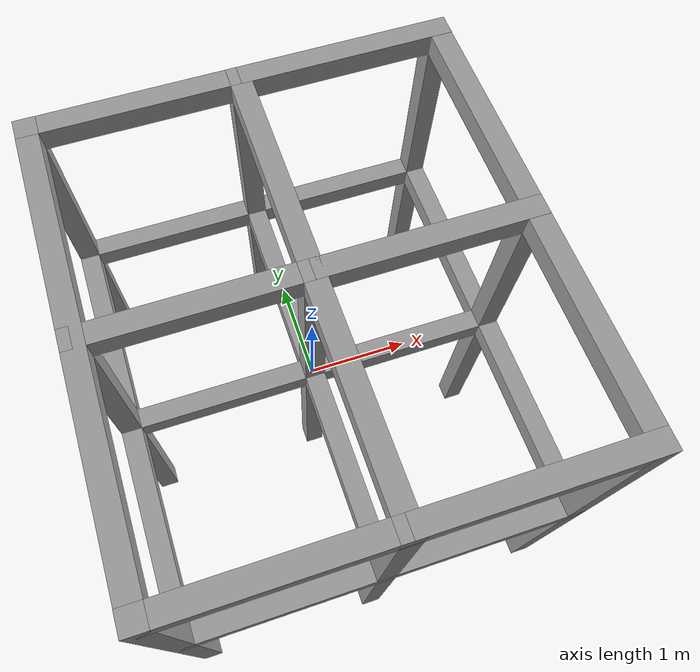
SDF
<?xml version='1.0'?>
<sdf version='1.7'>
  <model name='reticular_structure'>
    <link name='link_0'>
      <inertial>
        <mass>1</mass>
        <inertia>
          <ixx>0.166667</ixx>
          <ixy>0</ixy>
          <ixz>0</ixz>
          <iyy>0.166667</iyy>
          <iyz>0</iyz>
          <izz>0.166667</izz>
        </inertia>
        <pose>0 0 0 0 -0 0</pose>
      </inertial>
      <pose>0 0 0 0 -0 0</pose>
      <gravity>1</gravity>
      <self_collide>0</self_collide>
      <kinematic>0</kinematic>
      <enable_wind>0</enable_wind>
      <visual name='visual'>
        <pose>0 0 0 0 -0 0</pose>
        <geometry>
          <box>
            <size>0.2 0.2 4</size>
          </box>
        </geometry>
        <material>
          <lighting>1</lighting>
          <script>
            <uri>file://media/materials/scripts/gazebo.material</uri>
            <name>Gazebo/Grey</name>
          </script>
          <shader type='pixel'>
            <normal_map>__default__</normal_map>
          </shader>
          <ambient>0.3 0.3 0.3 1</ambient>
          <diffuse>0.7 0.7 0.7 1</diffuse>
          <specular>0.01 0.01 0.01 1</specular>
          <emissive>0 0 0 1</emissive>
        </material>
        <transparency>0</transparency>
        <cast_shadows>1</cast_shadows>
        <laser_retro>1</laser_retro>
      </visual>
      <collision name='collision'>
        <laser_retro>0</laser_retro>
        <max_contacts>10</max_contacts>
        <pose>0 0 0 0 -0 0</pose>
        <geometry>
          <box>
            <size>0.2 0.2 4</size>
          </box>
        </geometry>
        <surface>
          <friction>
            <ode>
              <mu>1</mu>
              <mu2>1</mu2>
              <fdir1>0 0 0</fdir1>
              <slip1>0</slip1>
              <slip2>0</slip2>
            </ode>
            <torsional>
              <coefficient>1</coefficient>
              <patch_radius>0</patch_radius>
              <surface_radius>0</surface_radius>
              <use_patch_radius>1</use_patch_radius>
              <ode>
                <slip>0</slip>
              </ode>
            </torsional>
          </friction>
          <bounce>
            <restitution_coefficient>0</restitution_coefficient>
            <threshold>1e+06</threshold>
          </bounce>
          <contact>
            <collide_without_contact>0</collide_without_contact>
            <collide_without_contact_bitmask>1</collide_without_contact_bitmask>
            <collide_bitmask>1</collide_bitmask>
            <ode>
              <soft_cfm>0</soft_cfm>
              <soft_erp>0.2</soft_erp>
              <kp>1e+13</kp>
              <kd>1</kd>
              <max_vel>0.01</max_vel>
              <min_depth>0</min_depth>
            </ode>
            <bullet>
              <split_impulse>1</split_impulse>
              <split_impulse_penetration_threshold>-0.01</split_impulse_penetration_threshold>
              <soft_cfm>0</soft_cfm>
              <soft_erp>0.2</soft_erp>
              <kp>1e+13</kp>
              <kd>1</kd>
            </bullet>
          </contact>
        </surface>
      </collision>
    </link>
    <link name='link_0_clone'>
      <inertial>
        <mass>1</mass>
        <inertia>
          <ixx>0.166667</ixx>
          <ixy>0</ixy>
          <ixz>0</ixz>
          <iyy>0.166667</iyy>
          <iyz>0</iyz>
          <izz>0.166667</izz>
        </inertia>
        <pose>0 0 0 0 -0 0</pose>
      </inertial>
      <pose>0 0 0 0 1.57 0</pose>
      <gravity>1</gravity>
      <self_collide>0</self_collide>
      <kinematic>0</kinematic>
      <enable_wind>0</enable_wind>
      <visual name='visual'>
        <pose>0 0 0 0 -0 0</pose>
        <geometry>
          <box>
            <size>0.2 0.2 4</size>
          </box>
        </geometry>
        <material>
          <lighting>1</lighting>
          <script>
            <uri>file://media/materials/scripts/gazebo.material</uri>
            <name>Gazebo/Grey</name>
          </script>
          <shader type='pixel'>
            <normal_map>__default__</normal_map>
          </shader>
          <ambient>0.3 0.3 0.3 1</ambient>
          <diffuse>0.7 0.7 0.7 1</diffuse>
          <specular>0.01 0.01 0.01 1</specular>
          <emissive>0 0 0 1</emissive>
        </material>
        <transparency>0</transparency>
        <cast_shadows>1</cast_shadows>
        <laser_retro>1</laser_retro>
      </visual>
      <collision name='collision'>
        <laser_retro>0</laser_retro>
        <max_contacts>10</max_contacts>
        <pose>0 0 0 0 -0 0</pose>
        <geometry>
          <box>
            <size>0.2 0.2 4</size>
          </box>
        </geometry>
        <surface>
          <friction>
            <ode>
              <mu>1</mu>
              <mu2>1</mu2>
              <fdir1>0 0 0</fdir1>
              <slip1>0</slip1>
              <slip2>0</slip2>
            </ode>
            <torsional>
              <coefficient>1</coefficient>
              <patch_radius>0</patch_radius>
              <surface_radius>0</surface_radius>
              <use_patch_radius>1</use_patch_radius>
              <ode>
                <slip>0</slip>
              </ode>
            </torsional>
          </friction>
          <bounce>
            <restitution_coefficient>0</restitution_coefficient>
            <threshold>1e+06</threshold>
          </bounce>
          <contact>
            <collide_without_contact>0</collide_without_contact>
            <collide_without_contact_bitmask>1</collide_without_contact_bitmask>
            <collide_bitmask>1</collide_bitmask>
            <ode>
              <soft_cfm>0</soft_cfm>
              <soft_erp>0.2</soft_erp>
              <kp>1e+13</kp>
              <kd>1</kd>
              <max_vel>0.01</max_vel>
              <min_depth>0</min_depth>
            </ode>
            <bullet>
              <split_impulse>1</split_impulse>
              <split_impulse_penetration_threshold>-0.01</split_impulse_penetration_threshold>
              <soft_cfm>0</soft_cfm>
              <soft_erp>0.2</soft_erp>
              <kp>1e+13</kp>
              <kd>1</kd>
            </bullet>
          </contact>
        </surface>
      </collision>
    </link>
    <link name='link_0_clone_0'>
      <inertial>
        <mass>1</mass>
        <inertia>
          <ixx>0.166667</ixx>
          <ixy>0</ixy>
          <ixz>0</ixz>
          <iyy>0.166667</iyy>
          <iyz>0</iyz>
          <izz>0.166667</izz>
        </inertia>
        <pose>0 0 0 0 -0 0</pose>
      </inertial>
      <pose>-1.9 0 0 0 -0 0</pose>
      <gravity>1</gravity>
      <self_collide>0</self_collide>
      <kinematic>0</kinematic>
      <enable_wind>0</enable_wind>
      <visual name='visual'>
        <pose>0 0 0 0 -0 0</pose>
        <geometry>
          <box>
            <size>0.2 0.2 4</size>
          </box>
        </geometry>
        <material>
          <lighting>1</lighting>
          <script>
            <uri>file://media/materials/scripts/gazebo.material</uri>
            <name>Gazebo/Grey</name>
          </script>
          <shader type='pixel'>
            <normal_map>__default__</normal_map>
          </shader>
          <ambient>0.3 0.3 0.3 1</ambient>
          <diffuse>0.7 0.7 0.7 1</diffuse>
          <specular>0.01 0.01 0.01 1</specular>
          <emissive>0 0 0 1</emissive>
        </material>
        <transparency>0</transparency>
        <cast_shadows>1</cast_shadows>
        <laser_retro>1</laser_retro>
      </visual>
      <collision name='collision'>
        <laser_retro>0</laser_retro>
        <max_contacts>10</max_contacts>
        <pose>0 0 0 0 -0 0</pose>
        <geometry>
          <box>
            <size>0.2 0.2 4</size>
          </box>
        </geometry>
        <surface>
          <friction>
            <ode>
              <mu>1</mu>
              <mu2>1</mu2>
              <fdir1>0 0 0</fdir1>
              <slip1>0</slip1>
              <slip2>0</slip2>
            </ode>
            <torsional>
              <coefficient>1</coefficient>
              <patch_radius>0</patch_radius>
              <surface_radius>0</surface_radius>
              <use_patch_radius>1</use_patch_radius>
              <ode>
                <slip>0</slip>
              </ode>
            </torsional>
          </friction>
          <bounce>
            <restitution_coefficient>0</restitution_coefficient>
            <threshold>1e+06</threshold>
          </bounce>
          <contact>
            <collide_without_contact>0</collide_without_contact>
            <collide_without_contact_bitmask>1</collide_without_contact_bitmask>
            <collide_bitmask>1</collide_bitmask>
            <ode>
              <soft_cfm>0</soft_cfm>
              <soft_erp>0.2</soft_erp>
              <kp>1e+13</kp>
              <kd>1</kd>
              <max_vel>0.01</max_vel>
              <min_depth>0</min_depth>
            </ode>
            <bullet>
              <split_impulse>1</split_impulse>
              <split_impulse_penetration_threshold>-0.01</split_impulse_penetration_threshold>
              <soft_cfm>0</soft_cfm>
              <soft_erp>0.2</soft_erp>
              <kp>1e+13</kp>
              <kd>1</kd>
            </bullet>
          </contact>
        </surface>
      </collision>
    </link>
    <link name='link_0_clone_0_clone'>
      <inertial>
        <mass>1</mass>
        <inertia>
          <ixx>0.166667</ixx>
          <ixy>0</ixy>
          <ixz>0</ixz>
          <iyy>0.166667</iyy>
          <iyz>0</iyz>
          <izz>0.166667</izz>
        </inertia>
        <pose>0 0 0 0 -0 0</pose>
      </inertial>
      <pose>1.9 0 0 0 -0 0</pose>
      <gravity>1</gravity>
      <self_collide>0</self_collide>
      <kinematic>0</kinematic>
      <enable_wind>0</enable_wind>
      <visual name='visual'>
        <pose>0 0 0 0 -0 0</pose>
        <geometry>
          <box>
            <size>0.2 0.2 4</size>
          </box>
        </geometry>
        <material>
          <lighting>1</lighting>
          <script>
            <uri>file://media/materials/scripts/gazebo.material</uri>
            <name>Gazebo/Grey</name>
          </script>
          <shader type='pixel'>
            <normal_map>__default__</normal_map>
          </shader>
          <ambient>0.3 0.3 0.3 1</ambient>
          <diffuse>0.7 0.7 0.7 1</diffuse>
          <specular>0.01 0.01 0.01 1</specular>
          <emissive>0 0 0 1</emissive>
        </material>
        <transparency>0</transparency>
        <cast_shadows>1</cast_shadows>
        <laser_retro>1</laser_retro>
      </visual>
      <collision name='collision'>
        <laser_retro>0</laser_retro>
        <max_contacts>10</max_contacts>
        <pose>0 0 0 0 -0 0</pose>
        <geometry>
          <box>
            <size>0.2 0.2 4</size>
          </box>
        </geometry>
        <surface>
          <friction>
            <ode>
              <mu>1</mu>
              <mu2>1</mu2>
              <fdir1>0 0 0</fdir1>
              <slip1>0</slip1>
              <slip2>0</slip2>
            </ode>
            <torsional>
              <coefficient>1</coefficient>
              <patch_radius>0</patch_radius>
              <surface_radius>0</surface_radius>
              <use_patch_radius>1</use_patch_radius>
              <ode>
                <slip>0</slip>
              </ode>
            </torsional>
          </friction>
          <bounce>
            <restitution_coefficient>0</restitution_coefficient>
            <threshold>1e+06</threshold>
          </bounce>
          <contact>
            <collide_without_contact>0</collide_without_contact>
            <collide_without_contact_bitmask>1</collide_without_contact_bitmask>
            <collide_bitmask>1</collide_bitmask>
            <ode>
              <soft_cfm>0</soft_cfm>
              <soft_erp>0.2</soft_erp>
              <kp>1e+13</kp>
              <kd>1</kd>
              <max_vel>0.01</max_vel>
              <min_depth>0</min_depth>
            </ode>
            <bullet>
              <split_impulse>1</split_impulse>
              <split_impulse_penetration_threshold>-0.01</split_impulse_penetration_threshold>
              <soft_cfm>0</soft_cfm>
              <soft_erp>0.2</soft_erp>
              <kp>1e+13</kp>
              <kd>1</kd>
            </bullet>
          </contact>
        </surface>
      </collision>
    </link>
    <link name='link_0_clone_0_clone_0'>
      <inertial>
        <mass>1</mass>
        <inertia>
          <ixx>0.166667</ixx>
          <ixy>0</ixy>
          <ixz>0</ixz>
          <iyy>0.166667</iyy>
          <iyz>0</iyz>
          <izz>0.166667</izz>
        </inertia>
        <pose>0 0 0 0 -0 0</pose>
      </inertial>
      <pose>0 -2.1 0 0 -0 0</pose>
      <gravity>1</gravity>
      <self_collide>0</self_collide>
      <kinematic>0</kinematic>
      <enable_wind>0</enable_wind>
      <visual name='visual'>
        <pose>0 0 0 0 -0 0</pose>
        <geometry>
          <box>
            <size>0.2 0.2 4</size>
          </box>
        </geometry>
        <material>
          <lighting>1</lighting>
          <script>
            <uri>file://media/materials/scripts/gazebo.material</uri>
            <name>Gazebo/Grey</name>
          </script>
          <shader type='pixel'>
            <normal_map>__default__</normal_map>
          </shader>
          <ambient>0.3 0.3 0.3 1</ambient>
          <diffuse>0.7 0.7 0.7 1</diffuse>
          <specular>0.01 0.01 0.01 1</specular>
          <emissive>0 0 0 1</emissive>
        </material>
        <transparency>0</transparency>
        <cast_shadows>1</cast_shadows>
        <laser_retro>1</laser_retro>
      </visual>
      <collision name='collision'>
        <laser_retro>0</laser_retro>
        <max_contacts>10</max_contacts>
        <pose>0 0 0 0 -0 0</pose>
        <geometry>
          <box>
            <size>0.2 0.2 4</size>
          </box>
        </geometry>
        <surface>
          <friction>
            <ode>
              <mu>1</mu>
              <mu2>1</mu2>
              <fdir1>0 0 0</fdir1>
              <slip1>0</slip1>
              <slip2>0</slip2>
            </ode>
            <torsional>
              <coefficient>1</coefficient>
              <patch_radius>0</patch_radius>
              <surface_radius>0</surface_radius>
              <use_patch_radius>1</use_patch_radius>
              <ode>
                <slip>0</slip>
              </ode>
            </torsional>
          </friction>
          <bounce>
            <restitution_coefficient>0</restitution_coefficient>
            <threshold>1e+06</threshold>
          </bounce>
          <contact>
            <collide_without_contact>0</collide_without_contact>
            <collide_without_contact_bitmask>1</collide_without_contact_bitmask>
            <collide_bitmask>1</collide_bitmask>
            <ode>
              <soft_cfm>0</soft_cfm>
              <soft_erp>0.2</soft_erp>
              <kp>1e+13</kp>
              <kd>1</kd>
              <max_vel>0.01</max_vel>
              <min_depth>0</min_depth>
            </ode>
            <bullet>
              <split_impulse>1</split_impulse>
              <split_impulse_penetration_threshold>-0.01</split_impulse_penetration_threshold>
              <soft_cfm>0</soft_cfm>
              <soft_erp>0.2</soft_erp>
              <kp>1e+13</kp>
              <kd>1</kd>
            </bullet>
          </contact>
        </surface>
      </collision>
    </link>
    <link name='link_0_clone_0_clone_0_clone'>
      <inertial>
        <mass>1</mass>
        <inertia>
          <ixx>0.166667</ixx>
          <ixy>0</ixy>
          <ixz>0</ixz>
          <iyy>0.166667</iyy>
          <iyz>0</iyz>
          <izz>0.166667</izz>
        </inertia>
        <pose>0 0 0 0 -0 0</pose>
      </inertial>
      <pose>1.9 -2.1 0 0 -0 0</pose>
      <gravity>1</gravity>
      <self_collide>0</self_collide>
      <kinematic>0</kinematic>
      <enable_wind>0</enable_wind>
      <visual name='visual'>
        <pose>0 0 0 0 -0 0</pose>
        <geometry>
          <box>
            <size>0.2 0.2 4</size>
          </box>
        </geometry>
        <material>
          <lighting>1</lighting>
          <script>
            <uri>file://media/materials/scripts/gazebo.material</uri>
            <name>Gazebo/Grey</name>
          </script>
          <shader type='pixel'>
            <normal_map>__default__</normal_map>
          </shader>
          <ambient>0.3 0.3 0.3 1</ambient>
          <diffuse>0.7 0.7 0.7 1</diffuse>
          <specular>0.01 0.01 0.01 1</specular>
          <emissive>0 0 0 1</emissive>
        </material>
        <transparency>0</transparency>
        <cast_shadows>1</cast_shadows>
        <laser_retro>1</laser_retro>
      </visual>
      <collision name='collision'>
        <laser_retro>0</laser_retro>
        <max_contacts>10</max_contacts>
        <pose>0 0 0 0 -0 0</pose>
        <geometry>
          <box>
            <size>0.2 0.2 4</size>
          </box>
        </geometry>
        <surface>
          <friction>
            <ode>
              <mu>1</mu>
              <mu2>1</mu2>
              <fdir1>0 0 0</fdir1>
              <slip1>0</slip1>
              <slip2>0</slip2>
            </ode>
            <torsional>
              <coefficient>1</coefficient>
              <patch_radius>0</patch_radius>
              <surface_radius>0</surface_radius>
              <use_patch_radius>1</use_patch_radius>
              <ode>
                <slip>0</slip>
              </ode>
            </torsional>
          </friction>
          <bounce>
            <restitution_coefficient>0</restitution_coefficient>
            <threshold>1e+06</threshold>
          </bounce>
          <contact>
            <collide_without_contact>0</collide_without_contact>
            <collide_without_contact_bitmask>1</collide_without_contact_bitmask>
            <collide_bitmask>1</collide_bitmask>
            <ode>
              <soft_cfm>0</soft_cfm>
              <soft_erp>0.2</soft_erp>
              <kp>1e+13</kp>
              <kd>1</kd>
              <max_vel>0.01</max_vel>
              <min_depth>0</min_depth>
            </ode>
            <bullet>
              <split_impulse>1</split_impulse>
              <split_impulse_penetration_threshold>-0.01</split_impulse_penetration_threshold>
              <soft_cfm>0</soft_cfm>
              <soft_erp>0.2</soft_erp>
              <kp>1e+13</kp>
              <kd>1</kd>
            </bullet>
          </contact>
        </surface>
      </collision>
    </link>
    <link name='link_0_clone_0_clone_0_clone_0'>
      <inertial>
        <mass>1</mass>
        <inertia>
          <ixx>0.166667</ixx>
          <ixy>0</ixy>
          <ixz>0</ixz>
          <iyy>0.166667</iyy>
          <iyz>0</iyz>
          <izz>0.166667</izz>
        </inertia>
        <pose>0 0 0 0 -0 0</pose>
      </inertial>
      <pose>-1.9 -2.1 0 0 -0 0</pose>
      <gravity>1</gravity>
      <self_collide>0</self_collide>
      <kinematic>0</kinematic>
      <enable_wind>0</enable_wind>
      <visual name='visual'>
        <pose>0 0 0 0 -0 0</pose>
        <geometry>
          <box>
            <size>0.2 0.2 4</size>
          </box>
        </geometry>
        <material>
          <lighting>1</lighting>
          <script>
            <uri>file://media/materials/scripts/gazebo.material</uri>
            <name>Gazebo/Grey</name>
          </script>
          <shader type='pixel'>
            <normal_map>__default__</normal_map>
          </shader>
          <ambient>0.3 0.3 0.3 1</ambient>
          <diffuse>0.7 0.7 0.7 1</diffuse>
          <specular>0.01 0.01 0.01 1</specular>
          <emissive>0 0 0 1</emissive>
        </material>
        <transparency>0</transparency>
        <cast_shadows>1</cast_shadows>
        <laser_retro>1</laser_retro>
      </visual>
      <collision name='collision'>
        <laser_retro>0</laser_retro>
        <max_contacts>10</max_contacts>
        <pose>0 0 0 0 -0 0</pose>
        <geometry>
          <box>
            <size>0.2 0.2 4</size>
          </box>
        </geometry>
        <surface>
          <friction>
            <ode>
              <mu>1</mu>
              <mu2>1</mu2>
              <fdir1>0 0 0</fdir1>
              <slip1>0</slip1>
              <slip2>0</slip2>
            </ode>
            <torsional>
              <coefficient>1</coefficient>
              <patch_radius>0</patch_radius>
              <surface_radius>0</surface_radius>
              <use_patch_radius>1</use_patch_radius>
              <ode>
                <slip>0</slip>
              </ode>
            </torsional>
          </friction>
          <bounce>
            <restitution_coefficient>0</restitution_coefficient>
            <threshold>1e+06</threshold>
          </bounce>
          <contact>
            <collide_without_contact>0</collide_without_contact>
            <collide_without_contact_bitmask>1</collide_without_contact_bitmask>
            <collide_bitmask>1</collide_bitmask>
            <ode>
              <soft_cfm>0</soft_cfm>
              <soft_erp>0.2</soft_erp>
              <kp>1e+13</kp>
              <kd>1</kd>
              <max_vel>0.01</max_vel>
              <min_depth>0</min_depth>
            </ode>
            <bullet>
              <split_impulse>1</split_impulse>
              <split_impulse_penetration_threshold>-0.01</split_impulse_penetration_threshold>
              <soft_cfm>0</soft_cfm>
              <soft_erp>0.2</soft_erp>
              <kp>1e+13</kp>
              <kd>1</kd>
            </bullet>
          </contact>
        </surface>
      </collision>
    </link>
    <link name='link_0_clone_0_clone_0_clone_clone'>
      <inertial>
        <mass>1</mass>
        <inertia>
          <ixx>0.166667</ixx>
          <ixy>0</ixy>
          <ixz>0</ixz>
          <iyy>0.166667</iyy>
          <iyz>0</iyz>
          <izz>0.166667</izz>
        </inertia>
        <pose>0 0 0 0 -0 0</pose>
      </inertial>
      <pose>1.9 2.1 0 0 -0 0</pose>
      <gravity>1</gravity>
      <self_collide>0</self_collide>
      <kinematic>0</kinematic>
      <enable_wind>0</enable_wind>
      <visual name='visual'>
        <pose>0 0 0 0 -0 0</pose>
        <geometry>
          <box>
            <size>0.2 0.2 4</size>
          </box>
        </geometry>
        <material>
          <lighting>1</lighting>
          <script>
            <uri>file://media/materials/scripts/gazebo.material</uri>
            <name>Gazebo/Grey</name>
          </script>
          <shader type='pixel'>
            <normal_map>__default__</normal_map>
          </shader>
          <ambient>0.3 0.3 0.3 1</ambient>
          <diffuse>0.7 0.7 0.7 1</diffuse>
          <specular>0.01 0.01 0.01 1</specular>
          <emissive>0 0 0 1</emissive>
        </material>
        <transparency>0</transparency>
        <cast_shadows>1</cast_shadows>
        <laser_retro>1</laser_retro>
      </visual>
      <collision name='collision'>
        <laser_retro>0</laser_retro>
        <max_contacts>10</max_contacts>
        <pose>0 0 0 0 -0 0</pose>
        <geometry>
          <box>
            <size>0.2 0.2 4</size>
          </box>
        </geometry>
        <surface>
          <friction>
            <ode>
              <mu>1</mu>
              <mu2>1</mu2>
              <fdir1>0 0 0</fdir1>
              <slip1>0</slip1>
              <slip2>0</slip2>
            </ode>
            <torsional>
              <coefficient>1</coefficient>
              <patch_radius>0</patch_radius>
              <surface_radius>0</surface_radius>
              <use_patch_radius>1</use_patch_radius>
              <ode>
                <slip>0</slip>
              </ode>
            </torsional>
          </friction>
          <bounce>
            <restitution_coefficient>0</restitution_coefficient>
            <threshold>1e+06</threshold>
          </bounce>
          <contact>
            <collide_without_contact>0</collide_without_contact>
            <collide_without_contact_bitmask>1</collide_without_contact_bitmask>
            <collide_bitmask>1</collide_bitmask>
            <ode>
              <soft_cfm>0</soft_cfm>
              <soft_erp>0.2</soft_erp>
              <kp>1e+13</kp>
              <kd>1</kd>
              <max_vel>0.01</max_vel>
              <min_depth>0</min_depth>
            </ode>
            <bullet>
              <split_impulse>1</split_impulse>
              <split_impulse_penetration_threshold>-0.01</split_impulse_penetration_threshold>
              <soft_cfm>0</soft_cfm>
              <soft_erp>0.2</soft_erp>
              <kp>1e+13</kp>
              <kd>1</kd>
            </bullet>
          </contact>
        </surface>
      </collision>
    </link>
    <link name='link_0_clone_0_clone_0_clone_clone_0'>
      <inertial>
        <mass>1</mass>
        <inertia>
          <ixx>0.166667</ixx>
          <ixy>0</ixy>
          <ixz>0</ixz>
          <iyy>0.166667</iyy>
          <iyz>0</iyz>
          <izz>0.166667</izz>
        </inertia>
        <pose>0 0 0 0 -0 0</pose>
      </inertial>
      <pose>0 2.1 0 0 -0 0</pose>
      <gravity>1</gravity>
      <self_collide>0</self_collide>
      <kinematic>0</kinematic>
      <enable_wind>0</enable_wind>
      <visual name='visual'>
        <pose>0 0 0 0 -0 0</pose>
        <geometry>
          <box>
            <size>0.2 0.2 4</size>
          </box>
        </geometry>
        <material>
          <lighting>1</lighting>
          <script>
            <uri>file://media/materials/scripts/gazebo.material</uri>
            <name>Gazebo/Grey</name>
          </script>
          <shader type='pixel'>
            <normal_map>__default__</normal_map>
          </shader>
          <ambient>0.3 0.3 0.3 1</ambient>
          <diffuse>0.7 0.7 0.7 1</diffuse>
          <specular>0.01 0.01 0.01 1</specular>
          <emissive>0 0 0 1</emissive>
        </material>
        <transparency>0</transparency>
        <cast_shadows>1</cast_shadows>
        <laser_retro>1</laser_retro>
      </visual>
      <collision name='collision'>
        <laser_retro>0</laser_retro>
        <max_contacts>10</max_contacts>
        <pose>0 0 0 0 -0 0</pose>
        <geometry>
          <box>
            <size>0.2 0.2 4</size>
          </box>
        </geometry>
        <surface>
          <friction>
            <ode>
              <mu>1</mu>
              <mu2>1</mu2>
              <fdir1>0 0 0</fdir1>
              <slip1>0</slip1>
              <slip2>0</slip2>
            </ode>
            <torsional>
              <coefficient>1</coefficient>
              <patch_radius>0</patch_radius>
              <surface_radius>0</surface_radius>
              <use_patch_radius>1</use_patch_radius>
              <ode>
                <slip>0</slip>
              </ode>
            </torsional>
          </friction>
          <bounce>
            <restitution_coefficient>0</restitution_coefficient>
            <threshold>1e+06</threshold>
          </bounce>
          <contact>
            <collide_without_contact>0</collide_without_contact>
            <collide_without_contact_bitmask>1</collide_without_contact_bitmask>
            <collide_bitmask>1</collide_bitmask>
            <ode>
              <soft_cfm>0</soft_cfm>
              <soft_erp>0.2</soft_erp>
              <kp>1e+13</kp>
              <kd>1</kd>
              <max_vel>0.01</max_vel>
              <min_depth>0</min_depth>
            </ode>
            <bullet>
              <split_impulse>1</split_impulse>
              <split_impulse_penetration_threshold>-0.01</split_impulse_penetration_threshold>
              <soft_cfm>0</soft_cfm>
              <soft_erp>0.2</soft_erp>
              <kp>1e+13</kp>
              <kd>1</kd>
            </bullet>
          </contact>
        </surface>
      </collision>
    </link>
    <link name='link_0_clone_0_clone_0_clone_clone_0_clone'>
      <inertial>
        <mass>1</mass>
        <inertia>
          <ixx>0.166667</ixx>
          <ixy>0</ixy>
          <ixz>0</ixz>
          <iyy>0.166667</iyy>
          <iyz>0</iyz>
          <izz>0.166667</izz>
        </inertia>
        <pose>0 0 0 0 -0 0</pose>
      </inertial>
      <pose>-1.9 2.1 0 0 -0 0</pose>
      <gravity>1</gravity>
      <self_collide>0</self_collide>
      <kinematic>0</kinematic>
      <enable_wind>0</enable_wind>
      <visual name='visual'>
        <pose>0 0 0 0 -0 0</pose>
        <geometry>
          <box>
            <size>0.2 0.2 4</size>
          </box>
        </geometry>
        <material>
          <lighting>1</lighting>
          <script>
            <uri>file://media/materials/scripts/gazebo.material</uri>
            <name>Gazebo/Grey</name>
          </script>
          <shader type='pixel'>
            <normal_map>__default__</normal_map>
          </shader>
          <ambient>0.3 0.3 0.3 1</ambient>
          <diffuse>0.7 0.7 0.7 1</diffuse>
          <specular>0.01 0.01 0.01 1</specular>
          <emissive>0 0 0 1</emissive>
        </material>
        <transparency>0</transparency>
        <cast_shadows>1</cast_shadows>
        <laser_retro>1</laser_retro>
      </visual>
      <collision name='collision'>
        <laser_retro>0</laser_retro>
        <max_contacts>10</max_contacts>
        <pose>0 0 0 0 -0 0</pose>
        <geometry>
          <box>
            <size>0.2 0.2 4</size>
          </box>
        </geometry>
        <surface>
          <friction>
            <ode>
              <mu>1</mu>
              <mu2>1</mu2>
              <fdir1>0 0 0</fdir1>
              <slip1>0</slip1>
              <slip2>0</slip2>
            </ode>
            <torsional>
              <coefficient>1</coefficient>
              <patch_radius>0</patch_radius>
              <surface_radius>0</surface_radius>
              <use_patch_radius>1</use_patch_radius>
              <ode>
                <slip>0</slip>
              </ode>
            </torsional>
          </friction>
          <bounce>
            <restitution_coefficient>0</restitution_coefficient>
            <threshold>1e+06</threshold>
          </bounce>
          <contact>
            <collide_without_contact>0</collide_without_contact>
            <collide_without_contact_bitmask>1</collide_without_contact_bitmask>
            <collide_bitmask>1</collide_bitmask>
            <ode>
              <soft_cfm>0</soft_cfm>
              <soft_erp>0.2</soft_erp>
              <kp>1e+13</kp>
              <kd>1</kd>
              <max_vel>0.01</max_vel>
              <min_depth>0</min_depth>
            </ode>
            <bullet>
              <split_impulse>1</split_impulse>
              <split_impulse_penetration_threshold>-0.01</split_impulse_penetration_threshold>
              <soft_cfm>0</soft_cfm>
              <soft_erp>0.2</soft_erp>
              <kp>1e+13</kp>
              <kd>1</kd>
            </bullet>
          </contact>
        </surface>
      </collision>
    </link>
    <link name='link_0_clone_clone'>
      <inertial>
        <mass>1</mass>
        <inertia>
          <ixx>0.166667</ixx>
          <ixy>0</ixy>
          <ixz>0</ixz>
          <iyy>0.166667</iyy>
          <iyz>0</iyz>
          <izz>0.166667</izz>
        </inertia>
        <pose>0 0 0 0 -0 0</pose>
      </inertial>
      <pose>0 0 0 1.56994 1.57 -4.3e-05</pose>
      <gravity>1</gravity>
      <self_collide>0</self_collide>
      <kinematic>0</kinematic>
      <enable_wind>0</enable_wind>
      <visual name='visual'>
        <pose>0 0 0 0 -0 0</pose>
        <geometry>
          <box>
            <size>0.2 0.2 4</size>
          </box>
        </geometry>
        <material>
          <lighting>1</lighting>
          <script>
            <uri>file://media/materials/scripts/gazebo.material</uri>
            <name>Gazebo/Grey</name>
          </script>
          <shader type='pixel'>
            <normal_map>__default__</normal_map>
          </shader>
          <ambient>0.3 0.3 0.3 1</ambient>
          <diffuse>0.7 0.7 0.7 1</diffuse>
          <specular>0.01 0.01 0.01 1</specular>
          <emissive>0 0 0 1</emissive>
        </material>
        <transparency>0</transparency>
        <cast_shadows>1</cast_shadows>
        <laser_retro>1</laser_retro>
      </visual>
      <collision name='collision'>
        <laser_retro>0</laser_retro>
        <max_contacts>10</max_contacts>
        <pose>0 0 0 0 -0 0</pose>
        <geometry>
          <box>
            <size>0.2 0.2 4</size>
          </box>
        </geometry>
        <surface>
          <friction>
            <ode>
              <mu>1</mu>
              <mu2>1</mu2>
              <fdir1>0 0 0</fdir1>
              <slip1>0</slip1>
              <slip2>0</slip2>
            </ode>
            <torsional>
              <coefficient>1</coefficient>
              <patch_radius>0</patch_radius>
              <surface_radius>0</surface_radius>
              <use_patch_radius>1</use_patch_radius>
              <ode>
                <slip>0</slip>
              </ode>
            </torsional>
          </friction>
          <bounce>
            <restitution_coefficient>0</restitution_coefficient>
            <threshold>1e+06</threshold>
          </bounce>
          <contact>
            <collide_without_contact>0</collide_without_contact>
            <collide_without_contact_bitmask>1</collide_without_contact_bitmask>
            <collide_bitmask>1</collide_bitmask>
            <ode>
              <soft_cfm>0</soft_cfm>
              <soft_erp>0.2</soft_erp>
              <kp>1e+13</kp>
              <kd>1</kd>
              <max_vel>0.01</max_vel>
              <min_depth>0</min_depth>
            </ode>
            <bullet>
              <split_impulse>1</split_impulse>
              <split_impulse_penetration_threshold>-0.01</split_impulse_penetration_threshold>
              <soft_cfm>0</soft_cfm>
              <soft_erp>0.2</soft_erp>
              <kp>1e+13</kp>
              <kd>1</kd>
            </bullet>
          </contact>
        </surface>
      </collision>
    </link>
    <link name='link_0_clone_clone_0'>
      <inertial>
        <mass>1</mass>
        <inertia>
          <ixx>0.166667</ixx>
          <ixy>0</ixy>
          <ixz>0</ixz>
          <iyy>0.166667</iyy>
          <iyz>0</iyz>
          <izz>0.166667</izz>
        </inertia>
        <pose>0 0 0 0 -0 0</pose>
      </inertial>
      <pose>0 -2.1 0 0 1.57 0</pose>
      <gravity>1</gravity>
      <self_collide>0</self_collide>
      <kinematic>0</kinematic>
      <enable_wind>0</enable_wind>
      <visual name='visual'>
        <pose>0 0 0 0 -0 0</pose>
        <geometry>
          <box>
            <size>0.2 0.2 4</size>
          </box>
        </geometry>
        <material>
          <lighting>1</lighting>
          <script>
            <uri>file://media/materials/scripts/gazebo.material</uri>
            <name>Gazebo/Grey</name>
          </script>
          <shader type='pixel'>
            <normal_map>__default__</normal_map>
          </shader>
          <ambient>0.3 0.3 0.3 1</ambient>
          <diffuse>0.7 0.7 0.7 1</diffuse>
          <specular>0.01 0.01 0.01 1</specular>
          <emissive>0 0 0 1</emissive>
        </material>
        <transparency>0</transparency>
        <cast_shadows>1</cast_shadows>
        <laser_retro>1</laser_retro>
      </visual>
      <collision name='collision'>
        <laser_retro>0</laser_retro>
        <max_contacts>10</max_contacts>
        <pose>0 0 0 0 -0 0</pose>
        <geometry>
          <box>
            <size>0.2 0.2 4</size>
          </box>
        </geometry>
        <surface>
          <friction>
            <ode>
              <mu>1</mu>
              <mu2>1</mu2>
              <fdir1>0 0 0</fdir1>
              <slip1>0</slip1>
              <slip2>0</slip2>
            </ode>
            <torsional>
              <coefficient>1</coefficient>
              <patch_radius>0</patch_radius>
              <surface_radius>0</surface_radius>
              <use_patch_radius>1</use_patch_radius>
              <ode>
                <slip>0</slip>
              </ode>
            </torsional>
          </friction>
          <bounce>
            <restitution_coefficient>0</restitution_coefficient>
            <threshold>1e+06</threshold>
          </bounce>
          <contact>
            <collide_without_contact>0</collide_without_contact>
            <collide_without_contact_bitmask>1</collide_without_contact_bitmask>
            <collide_bitmask>1</collide_bitmask>
            <ode>
              <soft_cfm>0</soft_cfm>
              <soft_erp>0.2</soft_erp>
              <kp>1e+13</kp>
              <kd>1</kd>
              <max_vel>0.01</max_vel>
              <min_depth>0</min_depth>
            </ode>
            <bullet>
              <split_impulse>1</split_impulse>
              <split_impulse_penetration_threshold>-0.01</split_impulse_penetration_threshold>
              <soft_cfm>0</soft_cfm>
              <soft_erp>0.2</soft_erp>
              <kp>1e+13</kp>
              <kd>1</kd>
            </bullet>
          </contact>
        </surface>
      </collision>
    </link>
    <link name='link_0_clone_clone_0_clone'>
      <inertial>
        <mass>1</mass>
        <inertia>
          <ixx>0.166667</ixx>
          <ixy>0</ixy>
          <ixz>0</ixz>
          <iyy>0.166667</iyy>
          <iyz>0</iyz>
          <izz>0.166667</izz>
        </inertia>
        <pose>0 0 0 0 -0 0</pose>
      </inertial>
      <pose>0 2.1 0 0 1.57 0</pose>
      <gravity>1</gravity>
      <self_collide>0</self_collide>
      <kinematic>0</kinematic>
      <enable_wind>0</enable_wind>
      <visual name='visual'>
        <pose>0 0 0 0 -0 0</pose>
        <geometry>
          <box>
            <size>0.2 0.2 4</size>
          </box>
        </geometry>
        <material>
          <lighting>1</lighting>
          <script>
            <uri>file://media/materials/scripts/gazebo.material</uri>
            <name>Gazebo/Grey</name>
          </script>
          <shader type='pixel'>
            <normal_map>__default__</normal_map>
          </shader>
          <ambient>0.3 0.3 0.3 1</ambient>
          <diffuse>0.7 0.7 0.7 1</diffuse>
          <specular>0.01 0.01 0.01 1</specular>
          <emissive>0 0 0 1</emissive>
        </material>
        <transparency>0</transparency>
        <cast_shadows>1</cast_shadows>
        <laser_retro>1</laser_retro>
      </visual>
      <collision name='collision'>
        <laser_retro>0</laser_retro>
        <max_contacts>10</max_contacts>
        <pose>0 0 0 0 -0 0</pose>
        <geometry>
          <box>
            <size>0.2 0.2 4</size>
          </box>
        </geometry>
        <surface>
          <friction>
            <ode>
              <mu>1</mu>
              <mu2>1</mu2>
              <fdir1>0 0 0</fdir1>
              <slip1>0</slip1>
              <slip2>0</slip2>
            </ode>
            <torsional>
              <coefficient>1</coefficient>
              <patch_radius>0</patch_radius>
              <surface_radius>0</surface_radius>
              <use_patch_radius>1</use_patch_radius>
              <ode>
                <slip>0</slip>
              </ode>
            </torsional>
          </friction>
          <bounce>
            <restitution_coefficient>0</restitution_coefficient>
            <threshold>1e+06</threshold>
          </bounce>
          <contact>
            <collide_without_contact>0</collide_without_contact>
            <collide_without_contact_bitmask>1</collide_without_contact_bitmask>
            <collide_bitmask>1</collide_bitmask>
            <ode>
              <soft_cfm>0</soft_cfm>
              <soft_erp>0.2</soft_erp>
              <kp>1e+13</kp>
              <kd>1</kd>
              <max_vel>0.01</max_vel>
              <min_depth>0</min_depth>
            </ode>
            <bullet>
              <split_impulse>1</split_impulse>
              <split_impulse_penetration_threshold>-0.01</split_impulse_penetration_threshold>
              <soft_cfm>0</soft_cfm>
              <soft_erp>0.2</soft_erp>
              <kp>1e+13</kp>
              <kd>1</kd>
            </bullet>
          </contact>
        </surface>
      </collision>
    </link>
    <link name='link_0_clone_clone_0_clone_0'>
      <inertial>
        <mass>1</mass>
        <inertia>
          <ixx>0.166667</ixx>
          <ixy>0</ixy>
          <ixz>0</ixz>
          <iyy>0.166667</iyy>
          <iyz>0</iyz>
          <izz>0.166667</izz>
        </inertia>
        <pose>0 0 0 0 -0 0</pose>
      </inertial>
      <pose>0 -2.1 1.9 0 1.57 0</pose>
      <gravity>1</gravity>
      <self_collide>0</self_collide>
      <kinematic>0</kinematic>
      <enable_wind>0</enable_wind>
      <visual name='visual'>
        <pose>0 0 0 0 -0 0</pose>
        <geometry>
          <box>
            <size>0.2 0.2 4</size>
          </box>
        </geometry>
        <material>
          <lighting>1</lighting>
          <script>
            <uri>file://media/materials/scripts/gazebo.material</uri>
            <name>Gazebo/Grey</name>
          </script>
          <shader type='pixel'>
            <normal_map>__default__</normal_map>
          </shader>
          <ambient>0.3 0.3 0.3 1</ambient>
          <diffuse>0.7 0.7 0.7 1</diffuse>
          <specular>0.01 0.01 0.01 1</specular>
          <emissive>0 0 0 1</emissive>
        </material>
        <transparency>0</transparency>
        <cast_shadows>1</cast_shadows>
        <laser_retro>1</laser_retro>
      </visual>
      <collision name='collision'>
        <laser_retro>0</laser_retro>
        <max_contacts>10</max_contacts>
        <pose>0 0 0 0 -0 0</pose>
        <geometry>
          <box>
            <size>0.2 0.2 4</size>
          </box>
        </geometry>
        <surface>
          <friction>
            <ode>
              <mu>1</mu>
              <mu2>1</mu2>
              <fdir1>0 0 0</fdir1>
              <slip1>0</slip1>
              <slip2>0</slip2>
            </ode>
            <torsional>
              <coefficient>1</coefficient>
              <patch_radius>0</patch_radius>
              <surface_radius>0</surface_radius>
              <use_patch_radius>1</use_patch_radius>
              <ode>
                <slip>0</slip>
              </ode>
            </torsional>
          </friction>
          <bounce>
            <restitution_coefficient>0</restitution_coefficient>
            <threshold>1e+06</threshold>
          </bounce>
          <contact>
            <collide_without_contact>0</collide_without_contact>
            <collide_without_contact_bitmask>1</collide_without_contact_bitmask>
            <collide_bitmask>1</collide_bitmask>
            <ode>
              <soft_cfm>0</soft_cfm>
              <soft_erp>0.2</soft_erp>
              <kp>1e+13</kp>
              <kd>1</kd>
              <max_vel>0.01</max_vel>
              <min_depth>0</min_depth>
            </ode>
            <bullet>
              <split_impulse>1</split_impulse>
              <split_impulse_penetration_threshold>-0.01</split_impulse_penetration_threshold>
              <soft_cfm>0</soft_cfm>
              <soft_erp>0.2</soft_erp>
              <kp>1e+13</kp>
              <kd>1</kd>
            </bullet>
          </contact>
        </surface>
      </collision>
    </link>
    <link name='link_0_clone_clone_0_clone_0_clone'>
      <inertial>
        <mass>1</mass>
        <inertia>
          <ixx>0.166667</ixx>
          <ixy>0</ixy>
          <ixz>0</ixz>
          <iyy>0.166667</iyy>
          <iyz>0</iyz>
          <izz>0.166667</izz>
        </inertia>
        <pose>0 0 0 0 -0 0</pose>
      </inertial>
      <pose>0 0 1.9 0 1.57 0</pose>
      <gravity>1</gravity>
      <self_collide>0</self_collide>
      <kinematic>0</kinematic>
      <enable_wind>0</enable_wind>
      <visual name='visual'>
        <pose>0 0 0 0 -0 0</pose>
        <geometry>
          <box>
            <size>0.2 0.2 4</size>
          </box>
        </geometry>
        <material>
          <lighting>1</lighting>
          <script>
            <uri>file://media/materials/scripts/gazebo.material</uri>
            <name>Gazebo/Grey</name>
          </script>
          <shader type='pixel'>
            <normal_map>__default__</normal_map>
          </shader>
          <ambient>0.3 0.3 0.3 1</ambient>
          <diffuse>0.7 0.7 0.7 1</diffuse>
          <specular>0.01 0.01 0.01 1</specular>
          <emissive>0 0 0 1</emissive>
        </material>
        <transparency>0</transparency>
        <cast_shadows>1</cast_shadows>
        <laser_retro>1</laser_retro>
      </visual>
      <collision name='collision'>
        <laser_retro>0</laser_retro>
        <max_contacts>10</max_contacts>
        <pose>0 0 0 0 -0 0</pose>
        <geometry>
          <box>
            <size>0.2 0.2 4</size>
          </box>
        </geometry>
        <surface>
          <friction>
            <ode>
              <mu>1</mu>
              <mu2>1</mu2>
              <fdir1>0 0 0</fdir1>
              <slip1>0</slip1>
              <slip2>0</slip2>
            </ode>
            <torsional>
              <coefficient>1</coefficient>
              <patch_radius>0</patch_radius>
              <surface_radius>0</surface_radius>
              <use_patch_radius>1</use_patch_radius>
              <ode>
                <slip>0</slip>
              </ode>
            </torsional>
          </friction>
          <bounce>
            <restitution_coefficient>0</restitution_coefficient>
            <threshold>1e+06</threshold>
          </bounce>
          <contact>
            <collide_without_contact>0</collide_without_contact>
            <collide_without_contact_bitmask>1</collide_without_contact_bitmask>
            <collide_bitmask>1</collide_bitmask>
            <ode>
              <soft_cfm>0</soft_cfm>
              <soft_erp>0.2</soft_erp>
              <kp>1e+13</kp>
              <kd>1</kd>
              <max_vel>0.01</max_vel>
              <min_depth>0</min_depth>
            </ode>
            <bullet>
              <split_impulse>1</split_impulse>
              <split_impulse_penetration_threshold>-0.01</split_impulse_penetration_threshold>
              <soft_cfm>0</soft_cfm>
              <soft_erp>0.2</soft_erp>
              <kp>1e+13</kp>
              <kd>1</kd>
            </bullet>
          </contact>
        </surface>
      </collision>
    </link>
    <link name='link_0_clone_clone_0_clone_0_clone_clone'>
      <inertial>
        <mass>1</mass>
        <inertia>
          <ixx>0.166667</ixx>
          <ixy>0</ixy>
          <ixz>0</ixz>
          <iyy>0.166667</iyy>
          <iyz>0</iyz>
          <izz>0.166667</izz>
        </inertia>
        <pose>0 0 0 0 -0 0</pose>
      </inertial>
      <pose>0 2.1 1.9 0 1.57 0</pose>
      <gravity>1</gravity>
      <self_collide>0</self_collide>
      <kinematic>0</kinematic>
      <enable_wind>0</enable_wind>
      <visual name='visual'>
        <pose>0 0 0 0 -0 0</pose>
        <geometry>
          <box>
            <size>0.2 0.2 4</size>
          </box>
        </geometry>
        <material>
          <lighting>1</lighting>
          <script>
            <uri>file://media/materials/scripts/gazebo.material</uri>
            <name>Gazebo/Grey</name>
          </script>
          <shader type='pixel'>
            <normal_map>__default__</normal_map>
          </shader>
          <ambient>0.3 0.3 0.3 1</ambient>
          <diffuse>0.7 0.7 0.7 1</diffuse>
          <specular>0.01 0.01 0.01 1</specular>
          <emissive>0 0 0 1</emissive>
        </material>
        <transparency>0</transparency>
        <cast_shadows>1</cast_shadows>
        <laser_retro>1</laser_retro>
      </visual>
      <collision name='collision'>
        <laser_retro>0</laser_retro>
        <max_contacts>10</max_contacts>
        <pose>0 0 0 0 -0 0</pose>
        <geometry>
          <box>
            <size>0.2 0.2 4</size>
          </box>
        </geometry>
        <surface>
          <friction>
            <ode>
              <mu>1</mu>
              <mu2>1</mu2>
              <fdir1>0 0 0</fdir1>
              <slip1>0</slip1>
              <slip2>0</slip2>
            </ode>
            <torsional>
              <coefficient>1</coefficient>
              <patch_radius>0</patch_radius>
              <surface_radius>0</surface_radius>
              <use_patch_radius>1</use_patch_radius>
              <ode>
                <slip>0</slip>
              </ode>
            </torsional>
          </friction>
          <bounce>
            <restitution_coefficient>0</restitution_coefficient>
            <threshold>1e+06</threshold>
          </bounce>
          <contact>
            <collide_without_contact>0</collide_without_contact>
            <collide_without_contact_bitmask>1</collide_without_contact_bitmask>
            <collide_bitmask>1</collide_bitmask>
            <ode>
              <soft_cfm>0</soft_cfm>
              <soft_erp>0.2</soft_erp>
              <kp>1e+13</kp>
              <kd>1</kd>
              <max_vel>0.01</max_vel>
              <min_depth>0</min_depth>
            </ode>
            <bullet>
              <split_impulse>1</split_impulse>
              <split_impulse_penetration_threshold>-0.01</split_impulse_penetration_threshold>
              <soft_cfm>0</soft_cfm>
              <soft_erp>0.2</soft_erp>
              <kp>1e+13</kp>
              <kd>1</kd>
            </bullet>
          </contact>
        </surface>
      </collision>
    </link>
    <link name='link_0_clone_clone_clone'>
      <inertial>
        <mass>1</mass>
        <inertia>
          <ixx>0.166667</ixx>
          <ixy>0</ixy>
          <ixz>0</ixz>
          <iyy>0.166667</iyy>
          <iyz>0</iyz>
          <izz>0.166667</izz>
        </inertia>
        <pose>0 0 0 0 -0 0</pose>
      </inertial>
      <pose>-1.9 0 0 1.56987 1.57 -0.000117</pose>
      <gravity>1</gravity>
      <self_collide>0</self_collide>
      <kinematic>0</kinematic>
      <enable_wind>0</enable_wind>
      <visual name='visual'>
        <pose>0 0 0 0 -0 0</pose>
        <geometry>
          <box>
            <size>0.2 0.2 4</size>
          </box>
        </geometry>
        <material>
          <lighting>1</lighting>
          <script>
            <uri>file://media/materials/scripts/gazebo.material</uri>
            <name>Gazebo/Grey</name>
          </script>
          <shader type='pixel'>
            <normal_map>__default__</normal_map>
          </shader>
          <ambient>0.3 0.3 0.3 1</ambient>
          <diffuse>0.7 0.7 0.7 1</diffuse>
          <specular>0.01 0.01 0.01 1</specular>
          <emissive>0 0 0 1</emissive>
        </material>
        <transparency>0</transparency>
        <cast_shadows>1</cast_shadows>
        <laser_retro>1</laser_retro>
      </visual>
      <collision name='collision'>
        <laser_retro>0</laser_retro>
        <max_contacts>10</max_contacts>
        <pose>0 0 0 0 -0 0</pose>
        <geometry>
          <box>
            <size>0.2 0.2 4</size>
          </box>
        </geometry>
        <surface>
          <friction>
            <ode>
              <mu>1</mu>
              <mu2>1</mu2>
              <fdir1>0 0 0</fdir1>
              <slip1>0</slip1>
              <slip2>0</slip2>
            </ode>
            <torsional>
              <coefficient>1</coefficient>
              <patch_radius>0</patch_radius>
              <surface_radius>0</surface_radius>
              <use_patch_radius>1</use_patch_radius>
              <ode>
                <slip>0</slip>
              </ode>
            </torsional>
          </friction>
          <bounce>
            <restitution_coefficient>0</restitution_coefficient>
            <threshold>1e+06</threshold>
          </bounce>
          <contact>
            <collide_without_contact>0</collide_without_contact>
            <collide_without_contact_bitmask>1</collide_without_contact_bitmask>
            <collide_bitmask>1</collide_bitmask>
            <ode>
              <soft_cfm>0</soft_cfm>
              <soft_erp>0.2</soft_erp>
              <kp>1e+13</kp>
              <kd>1</kd>
              <max_vel>0.01</max_vel>
              <min_depth>0</min_depth>
            </ode>
            <bullet>
              <split_impulse>1</split_impulse>
              <split_impulse_penetration_threshold>-0.01</split_impulse_penetration_threshold>
              <soft_cfm>0</soft_cfm>
              <soft_erp>0.2</soft_erp>
              <kp>1e+13</kp>
              <kd>1</kd>
            </bullet>
          </contact>
        </surface>
      </collision>
    </link>
    <link name='link_0_clone_clone_clone_clone'>
      <inertial>
        <mass>1</mass>
        <inertia>
          <ixx>0.166667</ixx>
          <ixy>0</ixy>
          <ixz>0</ixz>
          <iyy>0.166667</iyy>
          <iyz>0</iyz>
          <izz>0.166667</izz>
        </inertia>
        <pose>0 0 0 0 -0 0</pose>
      </inertial>
      <pose>1.9 0 0 1.56979 1.57 -0.000194</pose>
      <gravity>1</gravity>
      <self_collide>0</self_collide>
      <kinematic>0</kinematic>
      <enable_wind>0</enable_wind>
      <visual name='visual'>
        <pose>0 0 0 0 -0 0</pose>
        <geometry>
          <box>
            <size>0.2 0.2 4</size>
          </box>
        </geometry>
        <material>
          <lighting>1</lighting>
          <script>
            <uri>file://media/materials/scripts/gazebo.material</uri>
            <name>Gazebo/Grey</name>
          </script>
          <shader type='pixel'>
            <normal_map>__default__</normal_map>
          </shader>
          <ambient>0.3 0.3 0.3 1</ambient>
          <diffuse>0.7 0.7 0.7 1</diffuse>
          <specular>0.01 0.01 0.01 1</specular>
          <emissive>0 0 0 1</emissive>
        </material>
        <transparency>0</transparency>
        <cast_shadows>1</cast_shadows>
        <laser_retro>1</laser_retro>
      </visual>
      <collision name='collision'>
        <laser_retro>0</laser_retro>
        <max_contacts>10</max_contacts>
        <pose>0 0 0 0 -0 0</pose>
        <geometry>
          <box>
            <size>0.2 0.2 4</size>
          </box>
        </geometry>
        <surface>
          <friction>
            <ode>
              <mu>1</mu>
              <mu2>1</mu2>
              <fdir1>0 0 0</fdir1>
              <slip1>0</slip1>
              <slip2>0</slip2>
            </ode>
            <torsional>
              <coefficient>1</coefficient>
              <patch_radius>0</patch_radius>
              <surface_radius>0</surface_radius>
              <use_patch_radius>1</use_patch_radius>
              <ode>
                <slip>0</slip>
              </ode>
            </torsional>
          </friction>
          <bounce>
            <restitution_coefficient>0</restitution_coefficient>
            <threshold>1e+06</threshold>
          </bounce>
          <contact>
            <collide_without_contact>0</collide_without_contact>
            <collide_without_contact_bitmask>1</collide_without_contact_bitmask>
            <collide_bitmask>1</collide_bitmask>
            <ode>
              <soft_cfm>0</soft_cfm>
              <soft_erp>0.2</soft_erp>
              <kp>1e+13</kp>
              <kd>1</kd>
              <max_vel>0.01</max_vel>
              <min_depth>0</min_depth>
            </ode>
            <bullet>
              <split_impulse>1</split_impulse>
              <split_impulse_penetration_threshold>-0.01</split_impulse_penetration_threshold>
              <soft_cfm>0</soft_cfm>
              <soft_erp>0.2</soft_erp>
              <kp>1e+13</kp>
              <kd>1</kd>
            </bullet>
          </contact>
        </surface>
      </collision>
    </link>
    <link name='link_0_clone_clone_clone_clone_clone'>
      <inertial>
        <mass>1</mass>
        <inertia>
          <ixx>0.166667</ixx>
          <ixy>0</ixy>
          <ixz>0</ixz>
          <iyy>0.166667</iyy>
          <iyz>0</iyz>
          <izz>0.166667</izz>
        </inertia>
        <pose>0 0 0 0 -0 0</pose>
      </inertial>
      <pose>1.9 0 1.9 1.56979 1.57 -0.000193</pose>
      <gravity>1</gravity>
      <self_collide>0</self_collide>
      <kinematic>0</kinematic>
      <enable_wind>0</enable_wind>
      <visual name='visual'>
        <pose>0 0 0 0 -0 0</pose>
        <geometry>
          <box>
            <size>0.2 0.2 4</size>
          </box>
        </geometry>
        <material>
          <lighting>1</lighting>
          <script>
            <uri>file://media/materials/scripts/gazebo.material</uri>
            <name>Gazebo/Grey</name>
          </script>
          <shader type='pixel'>
            <normal_map>__default__</normal_map>
          </shader>
          <ambient>0.3 0.3 0.3 1</ambient>
          <diffuse>0.7 0.7 0.7 1</diffuse>
          <specular>0.01 0.01 0.01 1</specular>
          <emissive>0 0 0 1</emissive>
        </material>
        <transparency>0</transparency>
        <cast_shadows>1</cast_shadows>
        <laser_retro>1</laser_retro>
      </visual>
      <collision name='collision'>
        <laser_retro>0</laser_retro>
        <max_contacts>10</max_contacts>
        <pose>0 0 0 0 -0 0</pose>
        <geometry>
          <box>
            <size>0.2 0.2 4</size>
          </box>
        </geometry>
        <surface>
          <friction>
            <ode>
              <mu>1</mu>
              <mu2>1</mu2>
              <fdir1>0 0 0</fdir1>
              <slip1>0</slip1>
              <slip2>0</slip2>
            </ode>
            <torsional>
              <coefficient>1</coefficient>
              <patch_radius>0</patch_radius>
              <surface_radius>0</surface_radius>
              <use_patch_radius>1</use_patch_radius>
              <ode>
                <slip>0</slip>
              </ode>
            </torsional>
          </friction>
          <bounce>
            <restitution_coefficient>0</restitution_coefficient>
            <threshold>1e+06</threshold>
          </bounce>
          <contact>
            <collide_without_contact>0</collide_without_contact>
            <collide_without_contact_bitmask>1</collide_without_contact_bitmask>
            <collide_bitmask>1</collide_bitmask>
            <ode>
              <soft_cfm>0</soft_cfm>
              <soft_erp>0.2</soft_erp>
              <kp>1e+13</kp>
              <kd>1</kd>
              <max_vel>0.01</max_vel>
              <min_depth>0</min_depth>
            </ode>
            <bullet>
              <split_impulse>1</split_impulse>
              <split_impulse_penetration_threshold>-0.01</split_impulse_penetration_threshold>
              <soft_cfm>0</soft_cfm>
              <soft_erp>0.2</soft_erp>
              <kp>1e+13</kp>
              <kd>1</kd>
            </bullet>
          </contact>
        </surface>
      </collision>
    </link>
    <link name='link_0_clone_clone_clone_clone_clone_clone'>
      <inertial>
        <mass>1</mass>
        <inertia>
          <ixx>0.166667</ixx>
          <ixy>0</ixy>
          <ixz>0</ixz>
          <iyy>0.166667</iyy>
          <iyz>0</iyz>
          <izz>0.166667</izz>
        </inertia>
        <pose>0 0 0 0 -0 0</pose>
      </inertial>
      <pose>0 0 1.9 1.56979 1.57 -0.000192</pose>
      <gravity>1</gravity>
      <self_collide>0</self_collide>
      <kinematic>0</kinematic>
      <enable_wind>0</enable_wind>
      <visual name='visual'>
        <pose>0 0 0 0 -0 0</pose>
        <geometry>
          <box>
            <size>0.2 0.2 4</size>
          </box>
        </geometry>
        <material>
          <lighting>1</lighting>
          <script>
            <uri>file://media/materials/scripts/gazebo.material</uri>
            <name>Gazebo/Grey</name>
          </script>
          <shader type='pixel'>
            <normal_map>__default__</normal_map>
          </shader>
          <ambient>0.3 0.3 0.3 1</ambient>
          <diffuse>0.7 0.7 0.7 1</diffuse>
          <specular>0.01 0.01 0.01 1</specular>
          <emissive>0 0 0 1</emissive>
        </material>
        <transparency>0</transparency>
        <cast_shadows>1</cast_shadows>
        <laser_retro>1</laser_retro>
      </visual>
      <collision name='collision'>
        <laser_retro>0</laser_retro>
        <max_contacts>10</max_contacts>
        <pose>0 0 0 0 -0 0</pose>
        <geometry>
          <box>
            <size>0.2 0.2 4</size>
          </box>
        </geometry>
        <surface>
          <friction>
            <ode>
              <mu>1</mu>
              <mu2>1</mu2>
              <fdir1>0 0 0</fdir1>
              <slip1>0</slip1>
              <slip2>0</slip2>
            </ode>
            <torsional>
              <coefficient>1</coefficient>
              <patch_radius>0</patch_radius>
              <surface_radius>0</surface_radius>
              <use_patch_radius>1</use_patch_radius>
              <ode>
                <slip>0</slip>
              </ode>
            </torsional>
          </friction>
          <bounce>
            <restitution_coefficient>0</restitution_coefficient>
            <threshold>1e+06</threshold>
          </bounce>
          <contact>
            <collide_without_contact>0</collide_without_contact>
            <collide_without_contact_bitmask>1</collide_without_contact_bitmask>
            <collide_bitmask>1</collide_bitmask>
            <ode>
              <soft_cfm>0</soft_cfm>
              <soft_erp>0.2</soft_erp>
              <kp>1e+13</kp>
              <kd>1</kd>
              <max_vel>0.01</max_vel>
              <min_depth>0</min_depth>
            </ode>
            <bullet>
              <split_impulse>1</split_impulse>
              <split_impulse_penetration_threshold>-0.01</split_impulse_penetration_threshold>
              <soft_cfm>0</soft_cfm>
              <soft_erp>0.2</soft_erp>
              <kp>1e+13</kp>
              <kd>1</kd>
            </bullet>
          </contact>
        </surface>
      </collision>
    </link>
    <link name='link_0_clone_clone_clone_clone_clone_clone_0'>
      <inertial>
        <mass>1</mass>
        <inertia>
          <ixx>0.166667</ixx>
          <ixy>0</ixy>
          <ixz>0</ixz>
          <iyy>0.166667</iyy>
          <iyz>0</iyz>
          <izz>0.166667</izz>
        </inertia>
        <pose>0 0 0 0 -0 0</pose>
      </inertial>
      <pose>-1.9 0 1.9 1.56979 1.57 -0.000192</pose>
      <gravity>1</gravity>
      <self_collide>0</self_collide>
      <kinematic>0</kinematic>
      <enable_wind>0</enable_wind>
      <visual name='visual'>
        <pose>0 0 0 0 -0 0</pose>
        <geometry>
          <box>
            <size>0.2 0.2 4</size>
          </box>
        </geometry>
        <material>
          <lighting>1</lighting>
          <script>
            <uri>file://media/materials/scripts/gazebo.material</uri>
            <name>Gazebo/Grey</name>
          </script>
          <shader type='pixel'>
            <normal_map>__default__</normal_map>
          </shader>
          <ambient>0.3 0.3 0.3 1</ambient>
          <diffuse>0.7 0.7 0.7 1</diffuse>
          <specular>0.01 0.01 0.01 1</specular>
          <emissive>0 0 0 1</emissive>
        </material>
        <transparency>0</transparency>
        <cast_shadows>1</cast_shadows>
        <laser_retro>1</laser_retro>
      </visual>
      <collision name='collision'>
        <laser_retro>0</laser_retro>
        <max_contacts>10</max_contacts>
        <pose>0 0 0 0 -0 0</pose>
        <geometry>
          <box>
            <size>0.2 0.2 4</size>
          </box>
        </geometry>
        <surface>
          <friction>
            <ode>
              <mu>1</mu>
              <mu2>1</mu2>
              <fdir1>0 0 0</fdir1>
              <slip1>0</slip1>
              <slip2>0</slip2>
            </ode>
            <torsional>
              <coefficient>1</coefficient>
              <patch_radius>0</patch_radius>
              <surface_radius>0</surface_radius>
              <use_patch_radius>1</use_patch_radius>
              <ode>
                <slip>0</slip>
              </ode>
            </torsional>
          </friction>
          <bounce>
            <restitution_coefficient>0</restitution_coefficient>
            <threshold>1e+06</threshold>
          </bounce>
          <contact>
            <collide_without_contact>0</collide_without_contact>
            <collide_without_contact_bitmask>1</collide_without_contact_bitmask>
            <collide_bitmask>1</collide_bitmask>
            <ode>
              <soft_cfm>0</soft_cfm>
              <soft_erp>0.2</soft_erp>
              <kp>1e+13</kp>
              <kd>1</kd>
              <max_vel>0.01</max_vel>
              <min_depth>0</min_depth>
            </ode>
            <bullet>
              <split_impulse>1</split_impulse>
              <split_impulse_penetration_threshold>-0.01</split_impulse_penetration_threshold>
              <soft_cfm>0</soft_cfm>
              <soft_erp>0.2</soft_erp>
              <kp>1e+13</kp>
              <kd>1</kd>
            </bullet>
          </contact>
        </surface>
      </collision>
    </link>
    <static>1</static>
    <allow_auto_disable>1</allow_auto_disable>
  </model>
</sdf>
